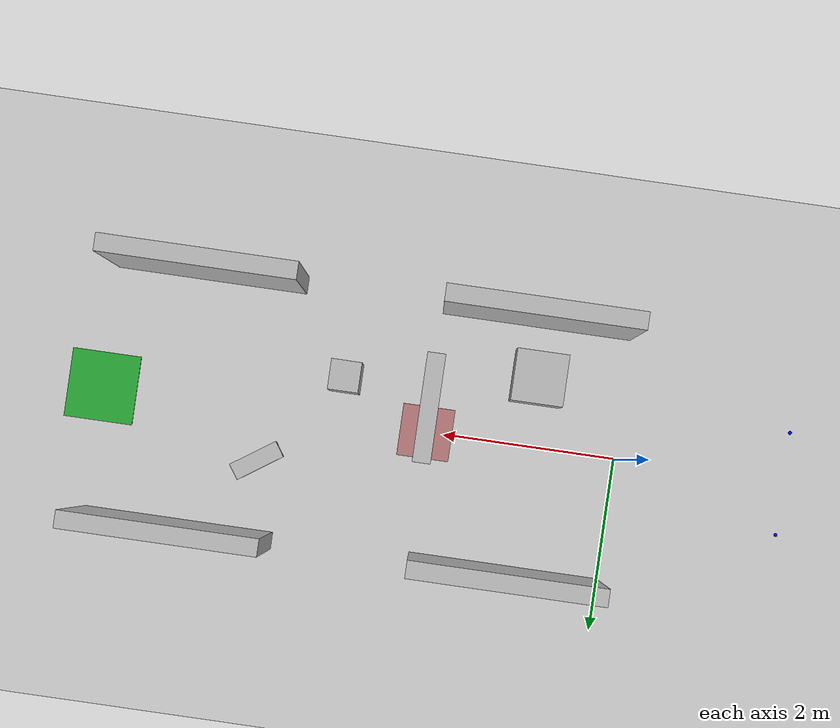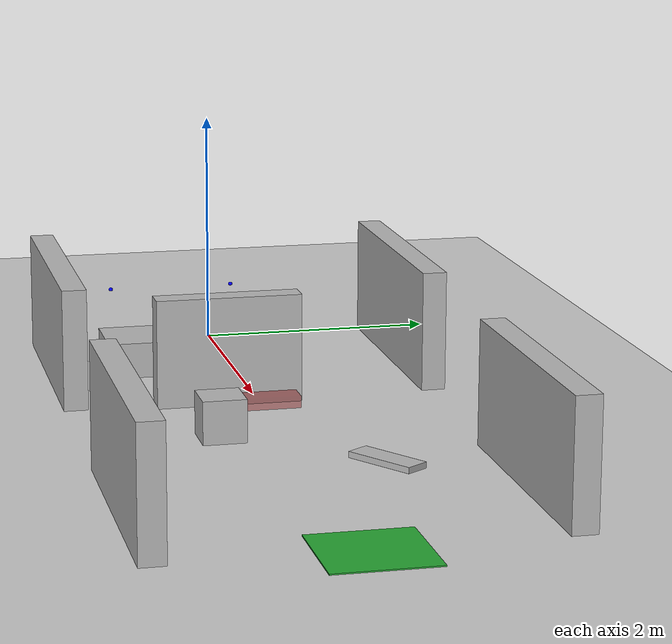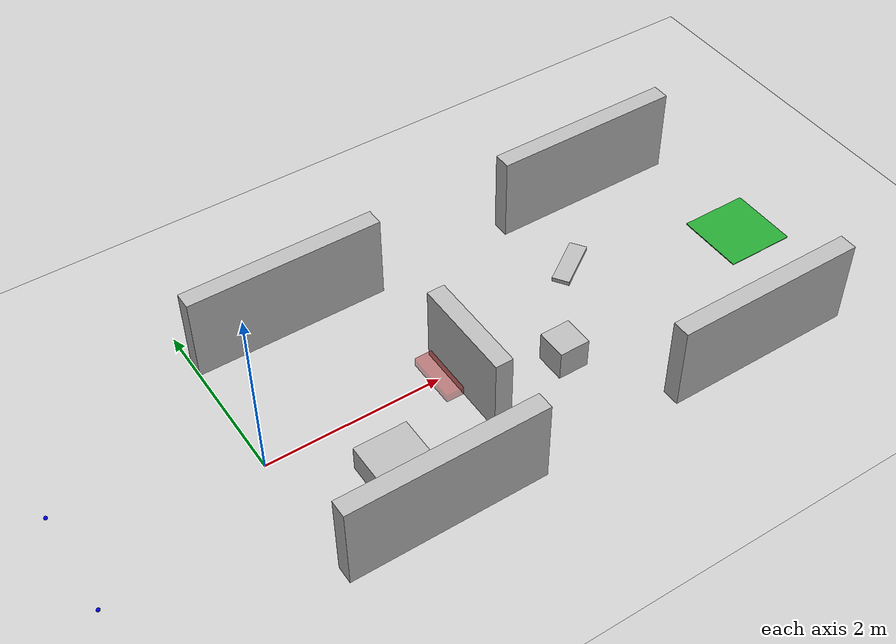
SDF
<?xml version="1.0" ?>
<sdf version="1.6">
  <world name="disaster_obstacles">

    <!-- Basic environment -->
    <include>
      <uri>model://sun</uri>
    </include>
    <include>
      <uri>model://ground_plane</uri>
    </include>

    <!-- world gravity -->
    <gravity>0 0 -9.81</gravity>

    <physics name="default_physics" type="ode">
      <max_step_size>0.001</max_step_size>
      <real_time_factor>1</real_time_factor>
      <real_time_update_rate>1000</real_time_update_rate>
    </physics>

    <light name="main_light" type="directional">
      <pose>0 0 10 0 0 0</pose>
      <diffuse>1 1 1 1</diffuse>
      <specular>0.5 0.5 0.5 1</specular>
      <direction>-0.5 0.2 -1</direction>
      <cast_shadows>true</cast_shadows>
    </light>

    <!-- ========= EXIT ZONE (goal) ========= -->
    <model name="exit_zone">
      <static>true</static>
      <link name="exit_link">
        <visual name="exit_vis">
          <geometry><box><size>0.8 0.8 0.01</size></box></geometry>
          <material>
            <script>
              <uri>file://media/materials/scripts/gazebo.material</uri>
              <name>Gazebo/Green</name>
            </script>
            <ambient>0 1 0 0.8</ambient>
            <diffuse>0 1 0 0.8</diffuse>
          </material>
        </visual>
        <collision name="exit_col">
          <geometry><box><size>0.8 0.8 0.01</size></box></geometry>
        </collision>
      </link>
      <pose>6.0 0 0.005 0 0 0</pose>
    </model>

    <!-- ========= STATIC OBSTACLES (walls with a central gap) ========= -->
    <!-- Top wall: left segment -->
    <model name="wall_top_left">
      <static>true</static>
      <link name="wtl_link">
        <visual name="wtl_vis"><geometry><box><size>2.2 0.2 1.0</size></box></geometry></visual>
        <collision name="wtl_col"><geometry><box><size>2.2 0.2 1.0</size></box></geometry></collision>
      </link>
      <!-- left part centered at x=1.1, y=1.5 -->
      <pose>1.1 1.5 0.5 0 0 0</pose>
    </model>

    <!-- Top wall: right segment -->
    <model name="wall_top_right">
      <static>true</static>
      <link name="wtr_link">
        <visual name="wtr_vis"><geometry><box><size>2.2 0.2 1.0</size></box></geometry></visual>
        <collision name="wtr_col"><geometry><box><size>2.2 0.2 1.0</size></box></geometry></collision>
      </link>
      <!-- right part centered at x=4.9, y=1.5 -->
      <pose>4.9 1.5 0.5 0 0 0</pose>
    </model>

    <!-- Bottom wall: left segment -->
    <model name="wall_bottom_left">
      <static>true</static>
      <link name="wbl_link">
        <visual name="wbl_vis"><geometry><box><size>2.2 0.2 1.0</size></box></geometry></visual>
        <collision name="wbl_col"><geometry><box><size>2.2 0.2 1.0</size></box></geometry></collision>
      </link>
      <!-- left part centered at x=1.1, y=-1.5 -->
      <pose>1.1 -1.5 0.5 0 0 0</pose>
    </model>

    <!-- Bottom wall: right segment -->
    <model name="wall_bottom_right">
      <static>true</static>
      <link name="wbr_link">
        <visual name="wbr_vis"><geometry><box><size>2.2 0.2 1.0</size></box></geometry></visual>
        <collision name="wbr_col"><geometry><box><size>2.2 0.2 1.0</size></box></geometry></collision>
      </link>
      <!-- right part centered at x=4.9, y=-1.5 -->
      <pose>4.9 -1.5 0.5 0 0 0</pose>
    </model>

    <!-- inner divider: moved slightly so it doesn't block the central gap -->
    <model name="divider">
      <static>true</static>
      <link name="div">
        <visual name="div_vis"><geometry><box><size>0.2 1.2 0.9</size></box></geometry></visual>
        <collision name="div_col"><geometry><box><size>0.2 1.2 0.9</size></box></geometry></collision>
      </link>
      <!-- smaller / shifted divider centered at x=2.2 so it flanks the corridor -->
      <pose>2.2 -0.25 0.45 0 0 0</pose>
    </model>

    <!-- some fixed rubble (static) -->
    <model name="rubble_static_1">
      <static>true</static>
      <link name="rs1">
        <visual name="rs1_vis"><geometry><box><size>0.6 0.6 0.3</size></box></geometry></visual>
        <collision name="rs1_col"><geometry><box><size>0.6 0.6 0.3</size></box></geometry></collision>
      </link>
      <pose>1.0 -0.8 0.15 0 0 0</pose>
    </model>

    <!-- ========= DYNAMIC DEBRIS (pushable boxes) ========= -->
    <model name="debris_box_2">
      <static>true</static>
      <link name="db2">
        <inertial>
          <mass>1.2</mass>
          <inertia>
            <ixx>0.01</ixx><ixy>0.0</ixy><ixz>0.0</ixz>
            <iyy>0.01</iyy><iyz>0.0</iyz><izz>0.01</izz>
          </inertia>
        </inertial>
        <collision name="db2_col">
          <geometry><box><size>0.35 0.35 0.35</size></box></geometry>
          <surface>
            <friction>
              <ode>
                <mu>0.9</mu><mu2>0.9</mu2>
              </ode>
            </friction>
          </surface>
        </collision>
        <visual name="db2_vis"><geometry><box><size>0.35 0.35 0.35</size></box></geometry></visual>
      </link>
      <pose>3.2 -0.5 0.175 0 0 0</pose>
    </model>

    <model name="debris_tilted">
      <static>true</static>
      <link name="dt">
        <inertial>
          <mass>1.0</mass>
          <inertia>
            <ixx>0.01</ixx><ixy>0.0</ixy><ixz>0.0</ixz>
            <iyy>0.01</iyy><iyz>0.0</iyz><izz>0.01</izz>
          </inertia>
        </inertial>
        <collision name="dt_col">
          <geometry><box><size>0.6 0.2 0.05</size></box></geometry>
        </collision>
        <visual name="dt_vis"><geometry><box><size>0.6 0.2 0.05</size></box></geometry></visual>
      </link>
      <pose>4.1 0.6 0.025 0 0 0.6</pose>
    </model>

    <!-- ========= ROBOT SPAWN / RANDOMIZATION HINTS ========= -->
    <model name="spawn_point_1">
      <static>true</static>
      <link name="sp1">
        <visual name="sp1_vis">
          <geometry><sphere><radius>0.02</radius></sphere></geometry>
          <material><ambient>0 0 1 1</ambient></material>
        </visual>
      </link>
      <pose>-2.0 0.6 0 0 0 0</pose>
    </model>

    <model name="spawn_point_2">
      <static>true</static>
      <link name="sp2">
        <visual name="sp2_vis">
          <geometry><sphere><radius>0.02</radius></sphere></geometry>
          <material><ambient>0 0 1 1</ambient></material>
        </visual>
      </link>
      <pose>-2.0 -0.6 0 0 0 0</pose>
    </model>

    <!-- ========= OPTIONAL: contact sensor zone to count collisions ========= -->
    <model name="collision_zone">
      <static>true</static>
      <link name="cz">
        <collision name="cz_col"><geometry><box><size>0.6 0.6 0.1</size></box></geometry></collision>
        <visual name="cz_vis"><geometry><box><size>0.6 0.6 0.1</size></box></geometry><material><ambient>0.6 0 0 0.4</ambient></material></visual>
      </link>
      <pose>2.2 0 0.05 0 0 0</pose>
    </model>

    <gui fullscreen='0'>
      <camera name='camera'>
        <!-- initial camera behind the spawn (robot at 0,0,0) -->
        <pose>-3 0 1.5 0 0.3 0</pose>
        <view_controller>orbit</view_controller>
      </camera>
    </gui>

  </world>
</sdf>
